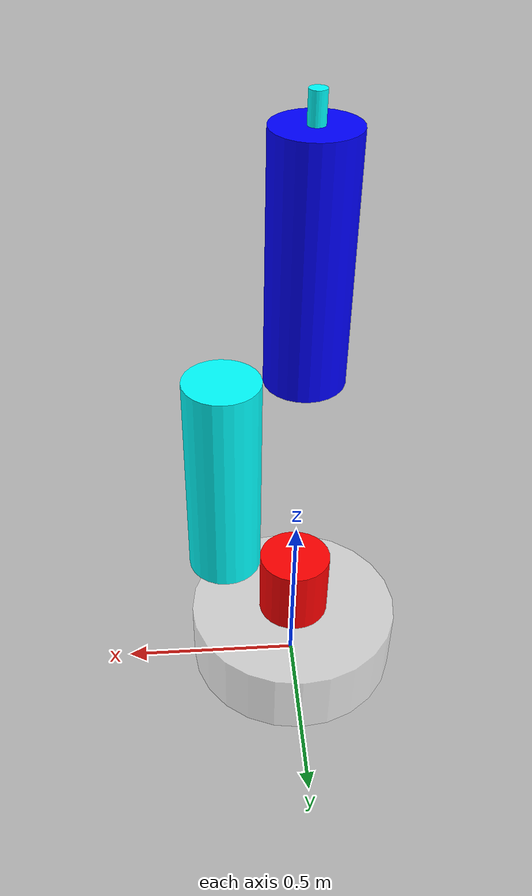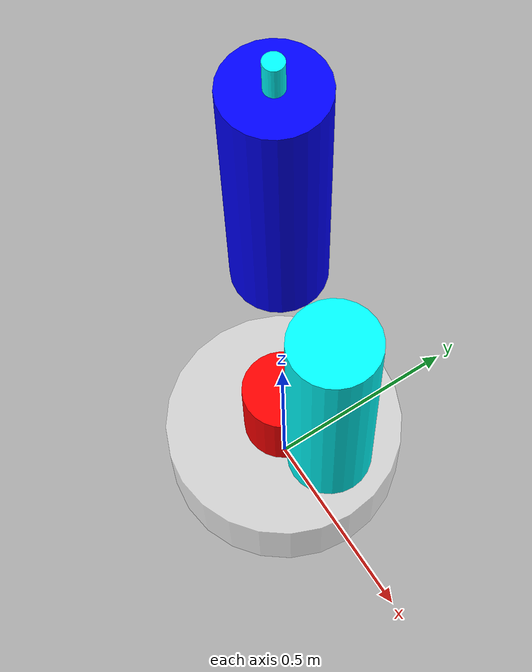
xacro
<?xml version="1.0"?>
<robot xmlns:xacro="http://www.ros.org/wiki/xacro" name="first_arm">
  <material name="red">
    <color rgba="1 0 0 1"/>
  </material>
  <material name="green">
    <color rgba="0 1 0 1"/>
  </material>
  <material name="yellow">
    <color rgba="0 1 1 1"/>
  </material>
  <material name="white">
    <color rgba="1 1 1 0.5"/>
  </material>
  <material name="blue">
    <color rgba="0 0 1 1"/>
  </material>

  <xacro:property name="radius_base" value="0.3" />
  <xacro:property name="height_base" value="0.2" />

  <xacro:property name="radius_yaw" value="0.1" />
  <xacro:property name="height_yaw" value="0.2" />

  <xacro:property name="radius_arm" value="0.1" />
  <xacro:property name="height_arm" value="0.6" />

  <xacro:property name="radius_wrist" value="0.05" />
  <xacro:property name="height_wrist" value="0.2" />

  <xacro:property name="radius_finger_fixed" value="0.02" />
  <xacro:property name="height_finger_fixed" value="0.1" />

  <link name="base_link">
    <inertial>
      <origin xyz="0 0 0" rpy="0 0 0" />
      <mass value="3.06" />
      <inertia ixx="0.3" ixy="0.0" ixz="0.0" iyy="0.3" iyz="0.0" izz="0.3" />
    </inertial>
  </link>

  <link name="base_bot">
    <inertial>
      <origin xyz="0 0 0" rpy="0 0 0" />
      <mass value="3.06" />
      <inertia ixx="0.3" ixy="0.0" ixz="0.0" iyy="0.3" iyz="0.0" izz="0.3" />
    </inertial>
    <visual>
      <geometry>
        <cylinder length="${height_base}" radius="${radius_base}" />
      </geometry>
      <origin xyz="0 0 0.1"/>
      <material name="white"/>
    </visual>
    <collision>
      <geometry>
        <cylinder length="${height_base}" radius="${radius_base}" />
      </geometry>
      <origin xyz="0 0 0.1"/>
    </collision>
  </link>

  <joint name="base_to_base_bot" type="fixed">
    <parent link="base_link"/>
    <child link="base_bot"/>
    <origin xyz="0 0 0"/>
  </joint>

  <link name="base_yaw">
    <inertial>
      <origin xyz="0 0 0" rpy="0 0 0" />
      <mass value="3.06" />
      <inertia ixx="0.3" ixy="0.0" ixz="0.0" iyy="0.3" iyz="0.0" izz="0.3" />
    </inertial>
    <visual>
      <geometry>
        <cylinder length="${height_yaw}" radius="${radius_yaw}" />
      </geometry>
      <origin xyz="0 0 0.1"/>
      <material name="red"/>
    </visual>
    <collision>
      <geometry>
        <cylinder length="${height_yaw}" radius="${radius_yaw}" />
      </geometry>
      <origin xyz="0 0 0.1"/>
    </collision>
  </link>

  <joint name="joint_0" type="revolute">
    <dynamics damping="1.0"/>
    <parent link="base_bot"/>
    <child link="base_yaw"/>
    <origin xyz="0 0 0.2"/>
    <limit effort="0.0" lower="-1.57" upper="1.57" velocity="1.0"/>
    <axis xyz="0 0 1"/>
  </joint>

  <link name="upper_arm">
    <inertial>
      <origin xyz="0 0 0" rpy="0 0 0" />
      <mass value="3.06" />
      <inertia ixx="0.3" ixy="0.0" ixz="0.0" iyy="0.3" iyz="0.0" izz="0.3" />
    </inertial>
    <visual>
      <geometry>
        <cylinder length="${height_arm}" radius="${radius_arm}" />
      </geometry>
      <origin rpy = "0 0 0" xyz="0.1 0 0.3"/>
      <material name="yellow"/>
    </visual>
    <collision>
      <geometry>
        <cylinder length="${height_arm}" radius="${radius_arm}" />
      </geometry>
      <origin rpy = "0 0 0" xyz="0.1 0 0.3"/>
    </collision>
  </link>

  <joint name="joint_1" type="revolute">
    <dynamics damping="1.0"/>
    <parent link="base_yaw"/>
    <child link="upper_arm"/>
    <origin xyz="0.1 0 0.2"/>
    <limit effort="0.0" lower="0" upper="1.57" velocity="2.0"/>
    <axis xyz="1 0 0"/>
  </joint>

  <link name="arm">
    <inertial>
      <origin xyz="0 0 0" rpy="0 0 0" />
      <mass value="3.06" />
      <inertia ixx="0.3" ixy="0.0" ixz="0.0" iyy="0.3" iyz="0.0" izz="0.3" />
    </inertial>
    <visual>
      <geometry>
        <cylinder length="${height_arm}" radius="${radius_arm}" />
      </geometry>
      <origin rpy = "0 0 0" xyz="0 0 0.3"/>
      <material name="blue"/>
    </visual>
    <collision>
      <geometry>
        <cylinder length="${height_arm}" radius="${radius_arm}" />
      </geometry>
      <origin rpy = "0 0 0" xyz="0 0 0.3"/>
    </collision>
  </link>

  <joint name="joint_2" type="revolute">
    <dynamics damping="1.0"/>
    <parent link="upper_arm"/>
    <child link="arm"/>
    <origin xyz="-0.1 0 0.6"/>
    <limit effort="0.0" lower="0" upper="1.57" velocity="2.0"/>
    <axis xyz="1 0 0"/>
  </joint>

  <link name="finger_low">
    <inertial>
      <origin xyz="0 0 0" rpy="0 0 0"/>
      <mass value="0.01"/>
      <inertia ixx="0.1" ixy="0.0" ixz="0.0" iyy="0.1" iyz="0.0" izz="0.1"/>
    </inertial>
    <visual>
      <geometry>
        <cylinder length="${height_finger_fixed}" radius="${radius_finger_fixed}" />
      </geometry>
      <origin rpy = "0 0 0" xyz="0 0 0.02"/>
      <material name="yellow"/>
    </visual>
    <collision>
      <geometry>
        <cylinder length="${height_finger_fixed}" radius="${radius_finger_fixed}" />
      </geometry>
      <origin rpy = "0 0 0" xyz="0 0 0.6"/>
    </collision>
  </link>

  <joint name="joint_fixed_finger" type="fixed">
    <parent link="arm"/>
    <child link="finger_low"/>
    <origin xyz="0 0 0.6"/>
  </joint>

</robot>
